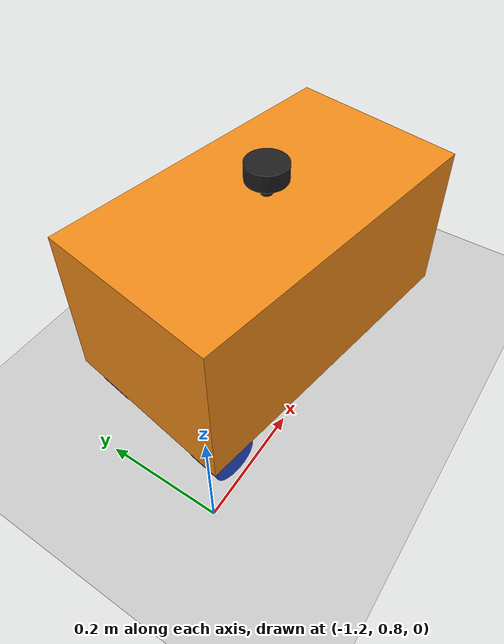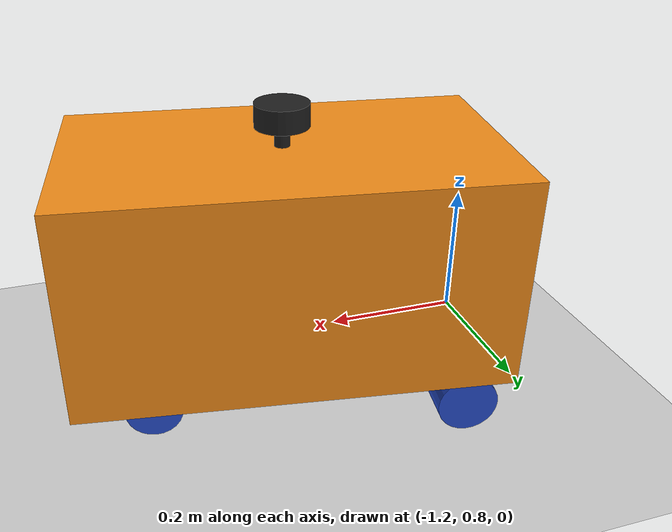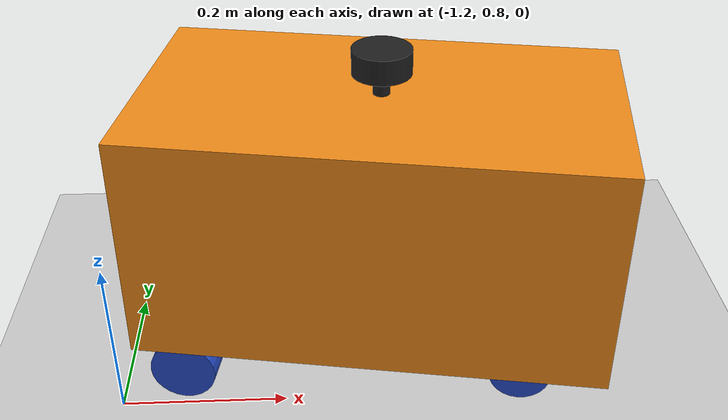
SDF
<sdf version="1.7">
 <world name="default">
  <light name="sun" type="directional">
   <pose>0 0 10 0 -0 0</pose>
   <diffuse>0.8 0.8 0.8 1</diffuse>
   <specular>0.2 0.2 0.2 1</specular>
   <attenuation>
    <range>1000</range>
    <constant>0.9</constant>
    <linear>0.01</linear>
    <quadratic>0.001</quadratic>
   </attenuation>
   <direction>-0.5 0.1 -0.9</direction>
   <spot><inner_angle>0</inner_angle><outer_angle>0</outer_angle><falloff>0</falloff></spot>
  </light>
  <model name="ground_plane">
   <static>1</static>
   <link name="link">
    <collision name="collision">
     <geometry><plane><normal>0 0 1</normal><size>100 100</size></plane></geometry>
     <surface>
      <contact><collide_bitmask>65535</collide_bitmask></contact>
      <friction><ode><mu>100</mu><mu2>50</mu2></ode></friction>
     </surface>
    </collision>
    <visual name="visual">
     <cast_shadows>0</cast_shadows>
     <geometry><plane><normal>0 0 1</normal><size>100 100</size></plane></geometry>
     <material>
      <script><uri>file://media/materials/scripts/gazebo.material</uri><name>Gazebo/Grey</name></script>
     </material>
    </visual>
   </link>
  </model>
  <gravity>0 0 -9.8</gravity>
  <magnetic_field>6e-06 2.3e-05 -4.2e-05</magnetic_field>
  <atmosphere type="adiabatic"/>
  <physics type="ode">
   <max_step_size>0.001</max_step_size>
   <real_time_factor>1</real_time_factor>
   <real_time_update_rate>1000</real_time_update_rate>
  </physics>
  <scene><ambient>0.4 0.4 0.4 1</ambient><background>0.7 0.7 0.7 1</background><shadows>1</shadows></scene>
  <audio><device>default</device></audio>
  <spherical_coordinates>
   <surface_model>EARTH_WGS84</surface_model>
   <latitude_deg>0</latitude_deg>
   <longitude_deg>0</longitude_deg>
   <elevation>0</elevation>
   <heading_deg>0</heading_deg>
  </spherical_coordinates>
  <model name="my_bot">
   <link name="base_link">
    <inertial>
     <pose>-0.7205 0 0.197636 0 -0 0</pose>
     <mass>1.1</mass>
     <inertia>
      <ixx>0.0175996</ixx>
      <ixy>0</ixy>
      <ixz>0</ixz>
      <iyy>0.0355796</iyy>
      <iyz>0</iyz>
      <izz>0.0342252</izz>
     </inertia>
    </inertial>
    <collision name="base_link_fixed_joint_lump__chassis_collision">
     <pose>-0.7205 0 0.18125 0 -0 0</pose>
     <geometry><box><size>0.559 0.311 0.2795</size></box></geometry>
    </collision>
    <collision name="base_link_fixed_joint_lump__laser_frame_collision_1">
     <pose>-0.7205 0 0.3615 0 -0 0</pose>
     <geometry><cylinder><length>0.04</length><radius>0.05</radius></cylinder></geometry>
    </collision>
    <visual name="base_link_fixed_joint_lump__chassis_visual">
     <pose>-0.7205 0 0.18125 0 -0 0</pose>
     <geometry><box><size>0.559 0.311 0.2795</size></box></geometry>
     <material>
      <script><name>Gazebo/Orange</name><uri>file://media/materials/scripts/gazebo.material</uri></script>
     </material>
    </visual>
    <visual name="base_link_fixed_joint_lump__laser_frame_visual_1">
     <pose>-0.7205 0 0.3615 0 -0 0</pose>
     <geometry><cylinder><length>0.03</length><radius>0.035</radius></cylinder></geometry>
     <material>
      <script><name>Gazebo/Black</name><uri>file://media/materials/scripts/gazebo.material</uri></script>
     </material>
    </visual>
    <visual name="base_link_fixed_joint_lump__laser_frame_visual_2">
     <pose>-0.7205 0 0.3115 0 -0 0</pose>
     <geometry><cylinder><length>0.1</length><radius>0.01</radius></cylinder></geometry>
     <material>
      <script><name>Gazebo/Black</name><uri>file://media/materials/scripts/gazebo.material</uri></script>
     </material>
    </visual>
    <sensor name="laser" type="ray">
     <visualize>0</visualize>
     <update_rate>10</update_rate>
     <ray>
      <scan>
       <horizontal>
        <samples>360</samples>
        <min_angle>-3.14</min_angle>
        <max_angle>3.14</max_angle>
        <resolution>1</resolution>
       </horizontal>
       <vertical><samples>1</samples><min_angle>0</min_angle><max_angle>0</max_angle></vertical>
      </scan>
      <range><min>0.3</min><max>12</max></range>
     </ray>
     <plugin name="laser_controller" filename="libgazebo_ros_ray_sensor.so">
      <ros><argument>--ros-args --remap ~/out:=scan</argument></ros>
      <output_type>sensor_msgs/LaserScan</output_type>
      <frame_name>laser_frame</frame_name>
     </plugin>
     <pose>-0.7205 0 0.3615 0 -0 0</pose>
    </sensor>
   </link>
   <joint name="front_left_axel_joint" type="revolute">
    <pose relative_to="base_link">-0.5375 0.05 0 -1.5708 0 0</pose>
    <parent>base_link</parent>
    <child>front_left_axel</child>
    <axis>
     <xyz>0 -1 0</xyz>
     <limit><lower>-0.785398</lower><upper>0.785398</upper><effort>100</effort><velocity>100</velocity></limit>
     <dynamics><spring_reference>0</spring_reference><spring_stiffness>0</spring_stiffness></dynamics>
    </axis>
   </joint>
   <link name="front_left_axel">
    <pose relative_to="front_left_axel_joint">0 0 0 0 -0 0</pose>
    <inertial>
     <mass>0.005</mass>
     <inertia>
      <ixx>4.55254e-07</ixx>
      <ixy>0</ixy>
      <ixz>0</ixz>
      <iyy>4.55254e-07</iyy>
      <iyz>0</iyz>
      <izz>6.25e-08</izz>
     </inertia>
    </inertial>
    <collision name="front_left_axel_collision">
     <geometry><sphere><radius>0.005</radius></sphere></geometry>
    </collision>
    <visual name="front_left_axel_visual">
     <geometry><cylinder><length>0.0319</length><radius>0.005</radius></cylinder></geometry>
     <material>
      <script><name>Gazebo/Red</name><uri>file://media/materials/scripts/gazebo.material</uri></script>
     </material>
    </visual>
   </link>
   <joint name="front_left_wheel_joint" type="revolute">
    <pose relative_to="front_left_axel">0 0 0.0319 0 -0 0</pose>
    <parent>front_left_axel</parent>
    <child>front_left_wheel</child>
    <axis>
     <xyz>0 0 1</xyz>
     <limit><lower>-1e+16</lower><upper>1e+16</upper></limit>
     <dynamics><spring_reference>0</spring_reference><spring_stiffness>0</spring_stiffness></dynamics>
    </axis>
   </joint>
   <link name="front_left_wheel">
    <pose relative_to="front_left_wheel_joint">0 0 0 0 -0 0</pose>
    <inertial>
     <mass>0.05</mass>
     <inertia>
      <ixx>2.10823e-05</ixx>
      <ixy>0</ixy>
      <ixz>0</ixz>
      <iyy>2.10823e-05</iyy>
      <iyz>0</iyz>
      <izz>3.51562e-05</izz>
     </inertia>
    </inertial>
    <collision name="front_left_wheel_collision">
     <geometry><sphere><radius>0.0375</radius></sphere></geometry>
    </collision>
    <visual name="front_left_wheel_visual">
     <geometry><cylinder><length>0.029</length><radius>0.0375</radius></cylinder></geometry>
     <material>
      <script><name>Gazebo/Blue</name><uri>file://media/materials/scripts/gazebo.material</uri></script>
     </material>
    </visual>
   </link>
   <joint name="front_right_axel_joint" type="revolute">
    <pose relative_to="base_link">-0.5375 -0.05 0 -1.5708 0 0</pose>
    <parent>base_link</parent>
    <child>front_right_axel</child>
    <axis>
     <xyz>0 1 0</xyz>
     <limit><lower>-0.785398</lower><upper>0.785398</upper><effort>100</effort><velocity>100</velocity></limit>
     <dynamics><spring_reference>0</spring_reference><spring_stiffness>0</spring_stiffness></dynamics>
    </axis>
   </joint>
   <link name="front_right_axel">
    <pose relative_to="front_right_axel_joint">0 0 0 0 -0 0</pose>
    <inertial>
     <mass>0.005</mass>
     <inertia>
      <ixx>4.55254e-07</ixx>
      <ixy>0</ixy>
      <ixz>0</ixz>
      <iyy>4.55254e-07</iyy>
      <iyz>0</iyz>
      <izz>6.25e-08</izz>
     </inertia>
    </inertial>
    <collision name="front_right_axel_collision">
     <geometry><sphere><radius>0.005</radius></sphere></geometry>
    </collision>
    <visual name="front_right_axel_visual">
     <geometry><cylinder><length>0.0319</length><radius>0.005</radius></cylinder></geometry>
     <material>
      <script><name>Gazebo/Red</name><uri>file://media/materials/scripts/gazebo.material</uri></script>
     </material>
    </visual>
   </link>
   <joint name="front_right_wheel_joint" type="revolute">
    <pose relative_to="front_right_axel">0 0 -0.0319 0 -0 0</pose>
    <parent>front_right_axel</parent>
    <child>front_right_wheel</child>
    <axis>
     <xyz>0 0 -1</xyz>
     <limit><lower>-1e+16</lower><upper>1e+16</upper></limit>
     <dynamics><spring_reference>0</spring_reference><spring_stiffness>0</spring_stiffness></dynamics>
    </axis>
   </joint>
   <link name="front_right_wheel">
    <pose relative_to="front_right_wheel_joint">0 0 0 0 -0 0</pose>
    <inertial>
     <mass>0.05</mass>
     <inertia>
      <ixx>2.10823e-05</ixx>
      <ixy>0</ixy>
      <ixz>0</ixz>
      <iyy>2.10823e-05</iyy>
      <iyz>0</iyz>
      <izz>3.51562e-05</izz>
     </inertia>
    </inertial>
    <collision name="front_right_wheel_collision">
     <geometry><sphere><radius>0.0375</radius></sphere></geometry>
    </collision>
    <visual name="front_right_wheel_visual">
     <geometry><cylinder><length>0.029</length><radius>0.0375</radius></cylinder></geometry>
     <material>
      <script><name>Gazebo/Blue</name><uri>file://media/materials/scripts/gazebo.material</uri></script>
     </material>
    </visual>
   </link>
   <joint name="rear_axel_joint" type="revolute">
    <pose relative_to="base_link">-0.945 0 0 -1.5708 0 0</pose>
    <parent>base_link</parent>
    <child>rear_axel</child>
    <axis>
     <xyz>0 0 1</xyz>
     <limit><lower>-1e+16</lower><upper>1e+16</upper></limit>
     <dynamics><spring_reference>0</spring_reference><spring_stiffness>0</spring_stiffness></dynamics>
    </axis>
   </joint>
   <link name="rear_axel">
    <pose relative_to="rear_axel_joint">0 0 0 0 -0 0</pose>
    <inertial>
     <mass>0.15</mass>
     <inertia>
      <ixx>0.00148556</ixx>
      <ixy>0</ixy>
      <ixz>0</ixz>
      <iyy>0.00148556</iyy>
      <iyz>0</iyz>
      <izz>8.0625e-05</izz>
     </inertia>
    </inertial>
    <collision name="rear_axel_collision">
     <geometry><cylinder><length>0.2202</length><radius>0.04</radius></cylinder></geometry>
    </collision>
    <collision name="rear_axel_fixed_joint_lump__rear_left_wheel_collision_1">
     <pose>0 0 0.1101 0 -0 0</pose>
     <geometry><sphere><radius>0.04</radius></sphere></geometry>
    </collision>
    <collision name="rear_axel_fixed_joint_lump__rear_right_wheel_collision_2">
     <pose>0 0 -0.1101 0 -0 0</pose>
     <geometry><sphere><radius>0.04</radius></sphere></geometry>
    </collision>
    <visual name="rear_axel_visual">
     <geometry><cylinder><length>0.2202</length><radius>0.005</radius></cylinder></geometry>
     <material>
      <script><name>Gazebo/Red</name><uri>file://media/materials/scripts/gazebo.material</uri></script>
     </material>
    </visual>
    <visual name="rear_axel_fixed_joint_lump__rear_left_wheel_visual_1">
     <pose>0 0 0.1101 0 -0 0</pose>
     <geometry><cylinder><length>0.061</length><radius>0.04</radius></cylinder></geometry>
     <material>
      <script><name>Gazebo/Blue</name><uri>file://media/materials/scripts/gazebo.material</uri></script>
     </material>
    </visual>
    <visual name="rear_axel_fixed_joint_lump__rear_right_wheel_visual_2">
     <pose>0 0 -0.1101 0 -0 0</pose>
     <geometry><cylinder><length>0.061</length><radius>0.04</radius></cylinder></geometry>
     <material>
      <script><name>Gazebo/Blue</name><uri>file://media/materials/scripts/gazebo.material</uri></script>
     </material>
    </visual>
   </link>
   <static>0</static>
   <plugin name="gazebo_ros2_control" filename="libgazebo_ros2_control.so">
    <parameters>/home/mousedroid/MD/install/md_beta/share/md_beta/config/controller_configuration.yaml</parameters>
   </plugin>
   <pose>-0.169693 0.799009 0.033474 7e-06 0.006905 -0.160485</pose>
  </model>
 </world>
</sdf>
